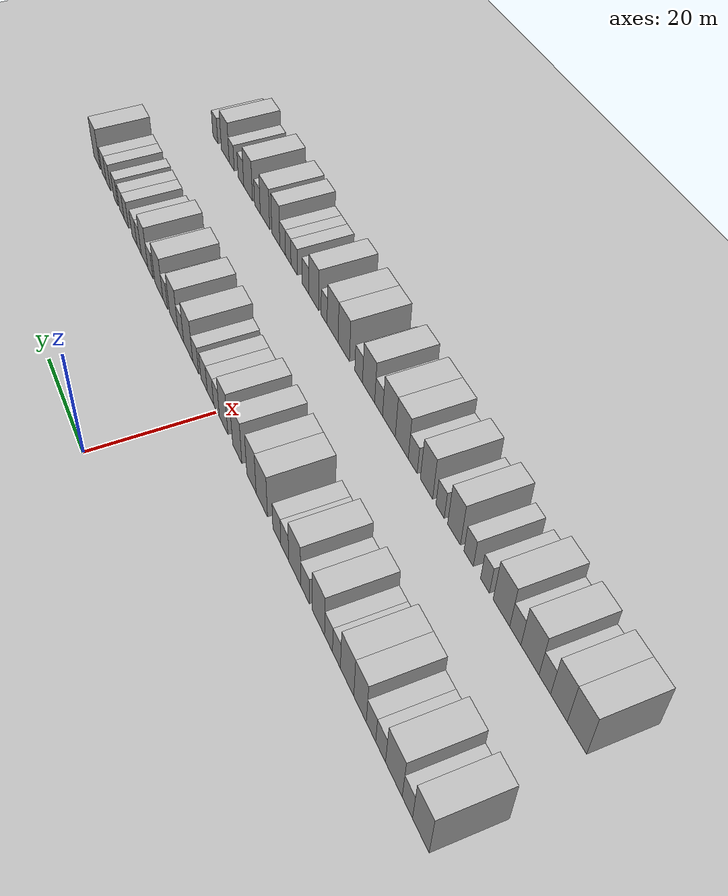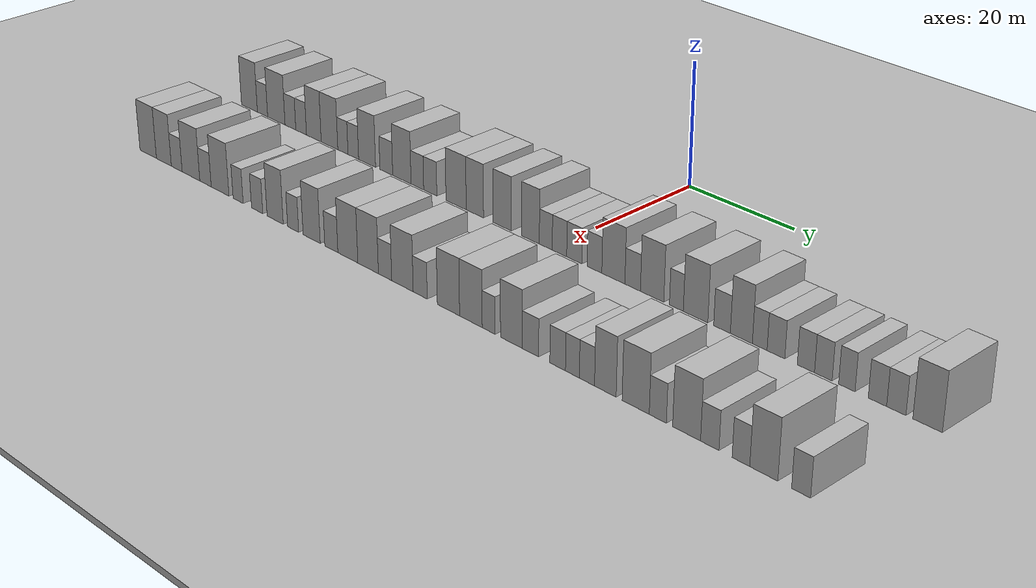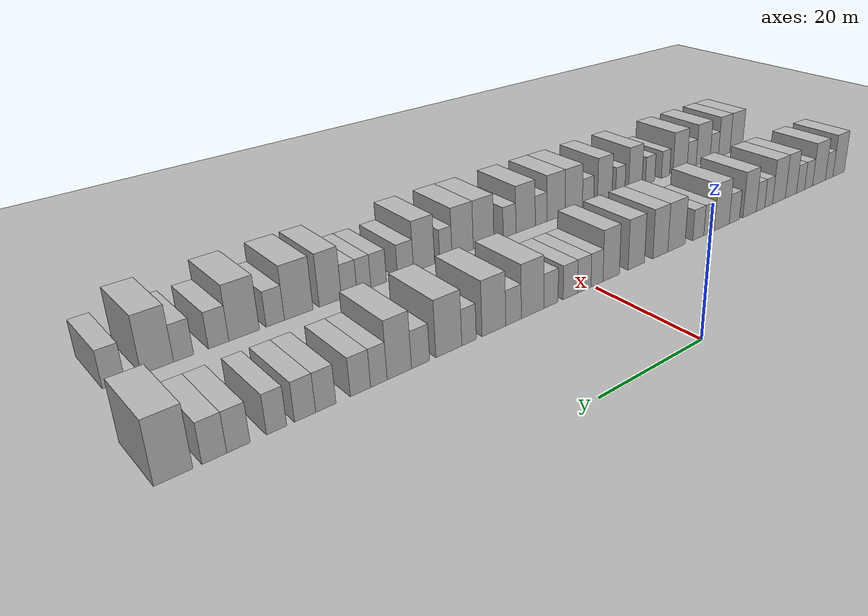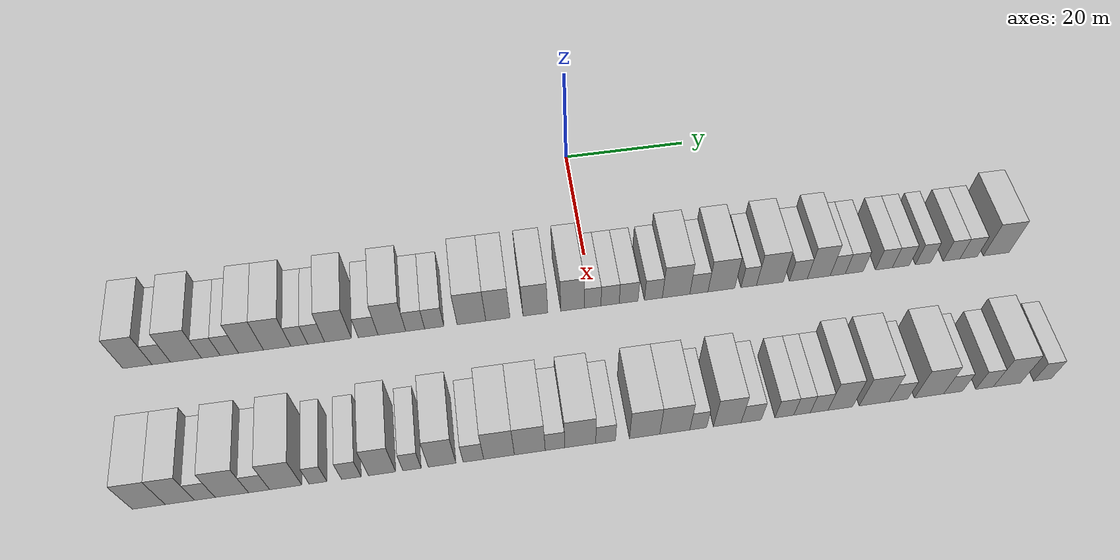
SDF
<sdf version="1.6">
 <world name="default">
  <include><name>ground_plane_1</name><uri>model://HANNAS_ground_plane</uri></include>
  <include>
   <name>ground_plane_2</name>
   <uri>model://HANNAS_ground_plane</uri>
   <pose>100 0 0  0 0 0</pose>
  </include>
  <model name="building_35">
   <static>1</static>
   <pose>25.0000 -68.0757 0 0.000000 0.000000 0.000000</pose>
   <link name="link">
    <pose>0 0 4.50 0 0 0</pose>
    <collision name="collision"><geometry><box><size>10.0000 4.1905 9.0000</size></box></geometry></collision>
    <visual name="visual">
     <cast_shadows>0</cast_shadows>
     <geometry><box><size>10.0000 4.1905 9.0000</size></box></geometry>
     <material>
      <script>
       <uri>model://HANNAS_wall/materials/scripts</uri>
       <uri>model://HANNAS_wall/materials/textures</uri>
       <name>vrc/HANNAS_wall</name>
      </script>
     </material>
    </visual>
   </link>
  </model>
  <model name="building_36">
   <static>1</static>
   <pose>25.0000 -64.6433 0 0.000000 0.000000 0.000000</pose>
   <link name="link">
    <pose>0 0 3.00 0 0 0</pose>
    <collision name="collision"><geometry><box><size>10.0000 2.6743 6.0000</size></box></geometry></collision>
    <visual name="visual">
     <cast_shadows>0</cast_shadows>
     <geometry><box><size>10.0000 2.6743 6.0000</size></box></geometry>
     <material>
      <script>
       <uri>model://HANNAS_wall/materials/scripts</uri>
       <uri>model://HANNAS_wall/materials/textures</uri>
       <name>vrc/HANNAS_wall</name>
      </script>
     </material>
    </visual>
   </link>
  </model>
  <model name="building_37">
   <static>1</static>
   <pose>25.0000 -61.0658 0 0.000000 0.000000 0.000000</pose>
   <link name="link">
    <pose>0 0 4.50 0 0 0</pose>
    <collision name="collision"><geometry><box><size>10.0000 4.4806 9.0000</size></box></geometry></collision>
    <visual name="visual">
     <cast_shadows>0</cast_shadows>
     <geometry><box><size>10.0000 4.4806 9.0000</size></box></geometry>
     <material>
      <script>
       <uri>model://HANNAS_wall/materials/scripts</uri>
       <uri>model://HANNAS_wall/materials/textures</uri>
       <name>vrc/HANNAS_wall</name>
      </script>
     </material>
    </visual>
   </link>
  </model>
  <model name="building_38">
   <static>1</static>
   <pose>25.0000 -57.4622 0 0.000000 0.000000 0.000000</pose>
   <link name="link">
    <pose>0 0 3.00 0 0 0</pose>
    <collision name="collision"><geometry><box><size>10.0000 2.7266 6.0000</size></box></geometry></collision>
    <visual name="visual">
     <cast_shadows>0</cast_shadows>
     <geometry><box><size>10.0000 2.7266 6.0000</size></box></geometry>
     <material>
      <script>
       <uri>model://HANNAS_wall/materials/scripts</uri>
       <uri>model://HANNAS_wall/materials/textures</uri>
       <name>vrc/HANNAS_wall</name>
      </script>
     </material>
    </visual>
   </link>
  </model>
  <model name="building_39">
   <static>1</static>
   <pose>25.0000 -54.7603 0 0.000000 0.000000 0.000000</pose>
   <link name="link">
    <pose>0 0 3.00 0 0 0</pose>
    <collision name="collision"><geometry><box><size>10.0000 2.6773 6.0000</size></box></geometry></collision>
    <visual name="visual">
     <cast_shadows>0</cast_shadows>
     <geometry><box><size>10.0000 2.6773 6.0000</size></box></geometry>
     <material>
      <script>
       <uri>model://HANNAS_wall/materials/scripts</uri>
       <uri>model://HANNAS_wall/materials/textures</uri>
       <name>vrc/HANNAS_wall</name>
      </script>
     </material>
    </visual>
   </link>
  </model>
  <model name="building_40">
   <static>1</static>
   <pose>25.0000 -51.5983 0 0.000000 0.000000 0.000000</pose>
   <link name="link">
    <pose>0 0 4.50 0 0 0</pose>
    <collision name="collision"><geometry><box><size>10.0000 3.6467 9.0000</size></box></geometry></collision>
    <visual name="visual">
     <cast_shadows>0</cast_shadows>
     <geometry><box><size>10.0000 3.6467 9.0000</size></box></geometry>
     <material>
      <script>
       <uri>model://HANNAS_wall/materials/scripts</uri>
       <uri>model://HANNAS_wall/materials/textures</uri>
       <name>vrc/HANNAS_wall</name>
      </script>
     </material>
    </visual>
   </link>
  </model>
  <model name="building_41">
   <static>1</static>
   <pose>25.0000 -47.7491 0 0.000000 0.000000 0.000000</pose>
   <link name="link">
    <pose>0 0 4.50 0 0 0</pose>
    <collision name="collision"><geometry><box><size>10.0000 4.0517 9.0000</size></box></geometry></collision>
    <visual name="visual">
     <cast_shadows>0</cast_shadows>
     <geometry><box><size>10.0000 4.0517 9.0000</size></box></geometry>
     <material>
      <script>
       <uri>model://HANNAS_wall/materials/scripts</uri>
       <uri>model://HANNAS_wall/materials/textures</uri>
       <name>vrc/HANNAS_wall</name>
      </script>
     </material>
    </visual>
   </link>
  </model>
  <model name="building_42">
   <static>1</static>
   <pose>25.0000 -44.4981 0 0.000000 0.000000 0.000000</pose>
   <link name="link">
    <pose>0 0 3.00 0 0 0</pose>
    <collision name="collision"><geometry><box><size>10.0000 2.4504 6.0000</size></box></geometry></collision>
    <visual name="visual">
     <cast_shadows>0</cast_shadows>
     <geometry><box><size>10.0000 2.4504 6.0000</size></box></geometry>
     <material>
      <script>
       <uri>model://HANNAS_wall/materials/scripts</uri>
       <uri>model://HANNAS_wall/materials/textures</uri>
       <name>vrc/HANNAS_wall</name>
      </script>
     </material>
    </visual>
   </link>
  </model>
  <model name="building_43">
   <static>1</static>
   <pose>25.0000 -42.0113 0 0.000000 0.000000 0.000000</pose>
   <link name="link">
    <pose>0 0 3.00 0 0 0</pose>
    <collision name="collision"><geometry><box><size>10.0000 2.5232 6.0000</size></box></geometry></collision>
    <visual name="visual">
     <cast_shadows>0</cast_shadows>
     <geometry><box><size>10.0000 2.5232 6.0000</size></box></geometry>
     <material>
      <script>
       <uri>model://HANNAS_wall/materials/scripts</uri>
       <uri>model://HANNAS_wall/materials/textures</uri>
       <name>vrc/HANNAS_wall</name>
      </script>
     </material>
    </visual>
   </link>
  </model>
  <model name="building_44">
   <static>1</static>
   <pose>25.0000 -38.7583 0 0.000000 0.000000 0.000000</pose>
   <link name="link">
    <pose>0 0 4.50 0 0 0</pose>
    <collision name="collision"><geometry><box><size>10.0000 3.9829 9.0000</size></box></geometry></collision>
    <visual name="visual">
     <cast_shadows>0</cast_shadows>
     <geometry><box><size>10.0000 3.9829 9.0000</size></box></geometry>
     <material>
      <script>
       <uri>model://HANNAS_wall/materials/scripts</uri>
       <uri>model://HANNAS_wall/materials/textures</uri>
       <name>vrc/HANNAS_wall</name>
      </script>
     </material>
    </visual>
   </link>
  </model>
  <model name="building_45">
   <static>1</static>
   <pose>25.0000 -34.2935 0 0.000000 0.000000 0.000000</pose>
   <link name="link">
    <pose>0 0 3.00 0 0 0</pose>
    <collision name="collision"><geometry><box><size>10.0000 2.9467 6.0000</size></box></geometry></collision>
    <visual name="visual">
     <cast_shadows>0</cast_shadows>
     <geometry><box><size>10.0000 2.9467 6.0000</size></box></geometry>
     <material>
      <script>
       <uri>model://HANNAS_wall/materials/scripts</uri>
       <uri>model://HANNAS_wall/materials/textures</uri>
       <name>vrc/HANNAS_wall</name>
      </script>
     </material>
    </visual>
   </link>
  </model>
  <model name="building_46">
   <static>1</static>
   <pose>25.0000 -30.7365 0 0.000000 0.000000 0.000000</pose>
   <link name="link">
    <pose>0 0 4.50 0 0 0</pose>
    <collision name="collision"><geometry><box><size>10.0000 4.1672 9.0000</size></box></geometry></collision>
    <visual name="visual">
     <cast_shadows>0</cast_shadows>
     <geometry><box><size>10.0000 4.1672 9.0000</size></box></geometry>
     <material>
      <script>
       <uri>model://HANNAS_wall/materials/scripts</uri>
       <uri>model://HANNAS_wall/materials/textures</uri>
       <name>vrc/HANNAS_wall</name>
      </script>
     </material>
    </visual>
   </link>
  </model>
  <model name="building_47">
   <static>1</static>
   <pose>25.0000 -27.2375 0 0.000000 0.000000 0.000000</pose>
   <link name="link">
    <pose>0 0 3.00 0 0 0</pose>
    <collision name="collision"><geometry><box><size>10.0000 2.8310 6.0000</size></box></geometry></collision>
    <visual name="visual">
     <cast_shadows>0</cast_shadows>
     <geometry><box><size>10.0000 2.8310 6.0000</size></box></geometry>
     <material>
      <script>
       <uri>model://HANNAS_wall/materials/scripts</uri>
       <uri>model://HANNAS_wall/materials/textures</uri>
       <name>vrc/HANNAS_wall</name>
      </script>
     </material>
    </visual>
   </link>
  </model>
  <model name="building_48">
   <static>1</static>
   <pose>25.0000 -24.3723 0 0.000000 0.000000 0.000000</pose>
   <link name="link">
    <pose>0 0 3.00 0 0 0</pose>
    <collision name="collision"><geometry><box><size>10.0000 2.8993 6.0000</size></box></geometry></collision>
    <visual name="visual">
     <cast_shadows>0</cast_shadows>
     <geometry><box><size>10.0000 2.8993 6.0000</size></box></geometry>
     <material>
      <script>
       <uri>model://HANNAS_wall/materials/scripts</uri>
       <uri>model://HANNAS_wall/materials/textures</uri>
       <name>vrc/HANNAS_wall</name>
      </script>
     </material>
    </visual>
   </link>
  </model>
  <model name="building_49">
   <static>1</static>
   <pose>25.0000 -18.7430 0 0.000000 0.000000 0.000000</pose>
   <link name="link">
    <pose>0 0 4.50 0 0 0</pose>
    <collision name="collision"><geometry><box><size>10.0000 4.3593 9.0000</size></box></geometry></collision>
    <visual name="visual">
     <cast_shadows>0</cast_shadows>
     <geometry><box><size>10.0000 4.3593 9.0000</size></box></geometry>
     <material>
      <script>
       <uri>model://HANNAS_wall/materials/scripts</uri>
       <uri>model://HANNAS_wall/materials/textures</uri>
       <name>vrc/HANNAS_wall</name>
      </script>
     </material>
    </visual>
   </link>
  </model>
  <model name="building_50">
   <static>1</static>
   <pose>25.0000 -14.7288 0 0.000000 0.000000 0.000000</pose>
   <link name="link">
    <pose>0 0 4.50 0 0 0</pose>
    <collision name="collision"><geometry><box><size>10.0000 3.6691 9.0000</size></box></geometry></collision>
    <visual name="visual">
     <cast_shadows>0</cast_shadows>
     <geometry><box><size>10.0000 3.6691 9.0000</size></box></geometry>
     <material>
      <script>
       <uri>model://HANNAS_wall/materials/scripts</uri>
       <uri>model://HANNAS_wall/materials/textures</uri>
       <name>vrc/HANNAS_wall</name>
      </script>
     </material>
    </visual>
   </link>
  </model>
  <model name="building_51">
   <static>1</static>
   <pose>25.0000 -8.9990 0 0.000000 0.000000 0.000000</pose>
   <link name="link">
    <pose>0 0 4.50 0 0 0</pose>
    <collision name="collision"><geometry><box><size>10.0000 3.7905 9.0000</size></box></geometry></collision>
    <visual name="visual">
     <cast_shadows>0</cast_shadows>
     <geometry><box><size>10.0000 3.7905 9.0000</size></box></geometry>
     <material>
      <script>
       <uri>model://HANNAS_wall/materials/scripts</uri>
       <uri>model://HANNAS_wall/materials/textures</uri>
       <name>vrc/HANNAS_wall</name>
      </script>
     </material>
    </visual>
   </link>
  </model>
  <model name="building_52">
   <static>1</static>
   <pose>25.0000 -3.2879 0 0.000000 0.000000 0.000000</pose>
   <link name="link">
    <pose>0 0 4.50 0 0 0</pose>
    <collision name="collision"><geometry><box><size>10.0000 3.6317 9.0000</size></box></geometry></collision>
    <visual name="visual">
     <cast_shadows>0</cast_shadows>
     <geometry><box><size>10.0000 3.6317 9.0000</size></box></geometry>
     <material>
      <script>
       <uri>model://HANNAS_wall/materials/scripts</uri>
       <uri>model://HANNAS_wall/materials/textures</uri>
       <name>vrc/HANNAS_wall</name>
      </script>
     </material>
    </visual>
   </link>
  </model>
  <model name="building_53">
   <static>1</static>
   <pose>25.0000 -0.1891 0 0.000000 0.000000 0.000000</pose>
   <link name="link">
    <pose>0 0 3.00 0 0 0</pose>
    <collision name="collision"><geometry><box><size>10.0000 2.5659 6.0000</size></box></geometry></collision>
    <visual name="visual">
     <cast_shadows>0</cast_shadows>
     <geometry><box><size>10.0000 2.5659 6.0000</size></box></geometry>
     <material>
      <script>
       <uri>model://HANNAS_wall/materials/scripts</uri>
       <uri>model://HANNAS_wall/materials/textures</uri>
       <name>vrc/HANNAS_wall</name>
      </script>
     </material>
    </visual>
   </link>
  </model>
  <model name="building_54">
   <static>1</static>
   <pose>25.0000 2.5082 0 0.000000 0.000000 0.000000</pose>
   <link name="link">
    <pose>0 0 3.00 0 0 0</pose>
    <collision name="collision"><geometry><box><size>10.0000 2.8288 6.0000</size></box></geometry></collision>
    <visual name="visual">
     <cast_shadows>0</cast_shadows>
     <geometry><box><size>10.0000 2.8288 6.0000</size></box></geometry>
     <material>
      <script>
       <uri>model://HANNAS_wall/materials/scripts</uri>
       <uri>model://HANNAS_wall/materials/textures</uri>
       <name>vrc/HANNAS_wall</name>
      </script>
     </material>
    </visual>
   </link>
  </model>
  <model name="building_55">
   <static>1</static>
   <pose>25.0000 5.3871 0 0.000000 0.000000 0.000000</pose>
   <link name="link">
    <pose>0 0 3.00 0 0 0</pose>
    <collision name="collision"><geometry><box><size>10.0000 2.9290 6.0000</size></box></geometry></collision>
    <visual name="visual">
     <cast_shadows>0</cast_shadows>
     <geometry><box><size>10.0000 2.9290 6.0000</size></box></geometry>
     <material>
      <script>
       <uri>model://HANNAS_wall/materials/scripts</uri>
       <uri>model://HANNAS_wall/materials/textures</uri>
       <name>vrc/HANNAS_wall</name>
      </script>
     </material>
    </visual>
   </link>
  </model>
  <model name="building_56">
   <static>1</static>
   <pose>25.0000 9.2515 0 0.000000 0.000000 0.000000</pose>
   <link name="link">
    <pose>0 0 3.00 0 0 0</pose>
    <collision name="collision"><geometry><box><size>10.0000 2.7997 6.0000</size></box></geometry></collision>
    <visual name="visual">
     <cast_shadows>0</cast_shadows>
     <geometry><box><size>10.0000 2.7997 6.0000</size></box></geometry>
     <material>
      <script>
       <uri>model://HANNAS_wall/materials/scripts</uri>
       <uri>model://HANNAS_wall/materials/textures</uri>
       <name>vrc/HANNAS_wall</name>
      </script>
     </material>
    </visual>
   </link>
  </model>
  <model name="building_57">
   <static>1</static>
   <pose>25.0000 12.8071 0 0.000000 0.000000 0.000000</pose>
   <link name="link">
    <pose>0 0 4.50 0 0 0</pose>
    <collision name="collision"><geometry><box><size>10.0000 4.3115 9.0000</size></box></geometry></collision>
    <visual name="visual">
     <cast_shadows>0</cast_shadows>
     <geometry><box><size>10.0000 4.3115 9.0000</size></box></geometry>
     <material>
      <script>
       <uri>model://HANNAS_wall/materials/scripts</uri>
       <uri>model://HANNAS_wall/materials/textures</uri>
       <name>vrc/HANNAS_wall</name>
      </script>
     </material>
    </visual>
   </link>
  </model>
  <model name="building_58">
   <static>1</static>
   <pose>25.0000 16.3882 0 0.000000 0.000000 0.000000</pose>
   <link name="link">
    <pose>0 0 3.00 0 0 0</pose>
    <collision name="collision"><geometry><box><size>10.0000 2.8509 6.0000</size></box></geometry></collision>
    <visual name="visual">
     <cast_shadows>0</cast_shadows>
     <geometry><box><size>10.0000 2.8509 6.0000</size></box></geometry>
     <material>
      <script>
       <uri>model://HANNAS_wall/materials/scripts</uri>
       <uri>model://HANNAS_wall/materials/textures</uri>
       <name>vrc/HANNAS_wall</name>
      </script>
     </material>
    </visual>
   </link>
  </model>
  <model name="building_59">
   <static>1</static>
   <pose>25.0000 19.9264 0 0.000000 0.000000 0.000000</pose>
   <link name="link">
    <pose>0 0 4.50 0 0 0</pose>
    <collision name="collision"><geometry><box><size>10.0000 4.2254 9.0000</size></box></geometry></collision>
    <visual name="visual">
     <cast_shadows>0</cast_shadows>
     <geometry><box><size>10.0000 4.2254 9.0000</size></box></geometry>
     <material>
      <script>
       <uri>model://HANNAS_wall/materials/scripts</uri>
       <uri>model://HANNAS_wall/materials/textures</uri>
       <name>vrc/HANNAS_wall</name>
      </script>
     </material>
    </visual>
   </link>
  </model>
  <model name="building_60">
   <static>1</static>
   <pose>25.0000 24.2655 0 0.000000 0.000000 0.000000</pose>
   <link name="link">
    <pose>0 0 3.00 0 0 0</pose>
    <collision name="collision"><geometry><box><size>10.0000 2.4528 6.0000</size></box></geometry></collision>
    <visual name="visual">
     <cast_shadows>0</cast_shadows>
     <geometry><box><size>10.0000 2.4528 6.0000</size></box></geometry>
     <material>
      <script>
       <uri>model://HANNAS_wall/materials/scripts</uri>
       <uri>model://HANNAS_wall/materials/textures</uri>
       <name>vrc/HANNAS_wall</name>
      </script>
     </material>
    </visual>
   </link>
  </model>
  <model name="building_61">
   <static>1</static>
   <pose>25.0000 27.6315 0 0.000000 0.000000 0.000000</pose>
   <link name="link">
    <pose>0 0 4.50 0 0 0</pose>
    <collision name="collision"><geometry><box><size>10.0000 4.2791 9.0000</size></box></geometry></collision>
    <visual name="visual">
     <cast_shadows>0</cast_shadows>
     <geometry><box><size>10.0000 4.2791 9.0000</size></box></geometry>
     <material>
      <script>
       <uri>model://HANNAS_wall/materials/scripts</uri>
       <uri>model://HANNAS_wall/materials/textures</uri>
       <name>vrc/HANNAS_wall</name>
      </script>
     </material>
    </visual>
   </link>
  </model>
  <model name="building_62">
   <static>1</static>
   <pose>25.0000 32.1901 0 0.000000 0.000000 0.000000</pose>
   <link name="link">
    <pose>0 0 3.00 0 0 0</pose>
    <collision name="collision"><geometry><box><size>10.0000 2.8381 6.0000</size></box></geometry></collision>
    <visual name="visual">
     <cast_shadows>0</cast_shadows>
     <geometry><box><size>10.0000 2.8381 6.0000</size></box></geometry>
     <material>
      <script>
       <uri>model://HANNAS_wall/materials/scripts</uri>
       <uri>model://HANNAS_wall/materials/textures</uri>
       <name>vrc/HANNAS_wall</name>
      </script>
     </material>
    </visual>
   </link>
  </model>
  <model name="building_63">
   <static>1</static>
   <pose>25.0000 35.4523 0 0.000000 0.000000 0.000000</pose>
   <link name="link">
    <pose>0 0 4.50 0 0 0</pose>
    <collision name="collision"><geometry><box><size>10.0000 3.6864 9.0000</size></box></geometry></collision>
    <visual name="visual">
     <cast_shadows>0</cast_shadows>
     <geometry><box><size>10.0000 3.6864 9.0000</size></box></geometry>
     <material>
      <script>
       <uri>model://HANNAS_wall/materials/scripts</uri>
       <uri>model://HANNAS_wall/materials/textures</uri>
       <name>vrc/HANNAS_wall</name>
      </script>
     </material>
    </visual>
   </link>
  </model>
  <model name="building_64">
   <static>1</static>
   <pose>25.0000 38.5100 0 0.000000 0.000000 0.000000</pose>
   <link name="link">
    <pose>0 0 3.00 0 0 0</pose>
    <collision name="collision"><geometry><box><size>10.0000 2.4288 6.0000</size></box></geometry></collision>
    <visual name="visual">
     <cast_shadows>0</cast_shadows>
     <geometry><box><size>10.0000 2.4288 6.0000</size></box></geometry>
     <material>
      <script>
       <uri>model://HANNAS_wall/materials/scripts</uri>
       <uri>model://HANNAS_wall/materials/textures</uri>
       <name>vrc/HANNAS_wall</name>
      </script>
     </material>
    </visual>
   </link>
  </model>
  <model name="building_65">
   <static>1</static>
   <pose>25.0000 41.1682 0 0.000000 0.000000 0.000000</pose>
   <link name="link">
    <pose>0 0 3.00 0 0 0</pose>
    <collision name="collision"><geometry><box><size>10.0000 2.8877 6.0000</size></box></geometry></collision>
    <visual name="visual">
     <cast_shadows>0</cast_shadows>
     <geometry><box><size>10.0000 2.8877 6.0000</size></box></geometry>
     <material>
      <script>
       <uri>model://HANNAS_wall/materials/scripts</uri>
       <uri>model://HANNAS_wall/materials/textures</uri>
       <name>vrc/HANNAS_wall</name>
      </script>
     </material>
    </visual>
   </link>
  </model>
  <model name="building_66">
   <static>1</static>
   <pose>25.0000 45.9838 0 0.000000 0.000000 0.000000</pose>
   <link name="link">
    <pose>0 0 3.00 0 0 0</pose>
    <collision name="collision"><geometry><box><size>10.0000 2.7433 6.0000</size></box></geometry></collision>
    <visual name="visual">
     <cast_shadows>0</cast_shadows>
     <geometry><box><size>10.0000 2.7433 6.0000</size></box></geometry>
     <material>
      <script>
       <uri>model://HANNAS_wall/materials/scripts</uri>
       <uri>model://HANNAS_wall/materials/textures</uri>
       <name>vrc/HANNAS_wall</name>
      </script>
     </material>
    </visual>
   </link>
  </model>
  <model name="building_67">
   <static>1</static>
   <pose>25.0000 48.7328 0 0.000000 0.000000 0.000000</pose>
   <link name="link">
    <pose>0 0 3.00 0 0 0</pose>
    <collision name="collision"><geometry><box><size>10.0000 2.7548 6.0000</size></box></geometry></collision>
    <visual name="visual">
     <cast_shadows>0</cast_shadows>
     <geometry><box><size>10.0000 2.7548 6.0000</size></box></geometry>
     <material>
      <script>
       <uri>model://HANNAS_wall/materials/scripts</uri>
       <uri>model://HANNAS_wall/materials/textures</uri>
       <name>vrc/HANNAS_wall</name>
      </script>
     </material>
    </visual>
   </link>
  </model>
  <model name="building_68">
   <static>1</static>
   <pose>25.0000 52.3777 0 0.000000 0.000000 0.000000</pose>
   <link name="link">
    <pose>0 0 3.00 0 0 0</pose>
    <collision name="collision"><geometry><box><size>10.0000 2.5351 6.0000</size></box></geometry></collision>
    <visual name="visual">
     <cast_shadows>0</cast_shadows>
     <geometry><box><size>10.0000 2.5351 6.0000</size></box></geometry>
     <material>
      <script>
       <uri>model://HANNAS_wall/materials/scripts</uri>
       <uri>model://HANNAS_wall/materials/textures</uri>
       <name>vrc/HANNAS_wall</name>
      </script>
     </material>
    </visual>
   </link>
  </model>
  <model name="building_69">
   <static>1</static>
   <pose>25.0000 57.0287 0 0.000000 0.000000 0.000000</pose>
   <link name="link">
    <pose>0 0 3.00 0 0 0</pose>
    <collision name="collision"><geometry><box><size>10.0000 2.7669 6.0000</size></box></geometry></collision>
    <visual name="visual">
     <cast_shadows>0</cast_shadows>
     <geometry><box><size>10.0000 2.7669 6.0000</size></box></geometry>
     <material>
      <script>
       <uri>model://HANNAS_wall/materials/scripts</uri>
       <uri>model://HANNAS_wall/materials/textures</uri>
       <name>vrc/HANNAS_wall</name>
      </script>
     </material>
    </visual>
   </link>
  </model>
  <model name="building_70">
   <static>1</static>
   <pose>25.0000 59.8413 0 0.000000 0.000000 0.000000</pose>
   <link name="link">
    <pose>0 0 3.00 0 0 0</pose>
    <collision name="collision"><geometry><box><size>10.0000 2.8583 6.0000</size></box></geometry></collision>
    <visual name="visual">
     <cast_shadows>0</cast_shadows>
     <geometry><box><size>10.0000 2.8583 6.0000</size></box></geometry>
     <material>
      <script>
       <uri>model://HANNAS_wall/materials/scripts</uri>
       <uri>model://HANNAS_wall/materials/textures</uri>
       <name>vrc/HANNAS_wall</name>
      </script>
     </material>
    </visual>
   </link>
  </model>
  <model name="building_71">
   <static>1</static>
   <pose>25.0000 64.4073 0 0.000000 0.000000 0.000000</pose>
   <link name="link">
    <pose>0 0 4.50 0 0 0</pose>
    <collision name="collision"><geometry><box><size>10.0000 4.2737 9.0000</size></box></geometry></collision>
    <visual name="visual">
     <cast_shadows>0</cast_shadows>
     <geometry><box><size>10.0000 4.2737 9.0000</size></box></geometry>
     <material>
      <script>
       <uri>model://HANNAS_wall/materials/scripts</uri>
       <uri>model://HANNAS_wall/materials/textures</uri>
       <name>vrc/HANNAS_wall</name>
      </script>
     </material>
    </visual>
   </link>
  </model>
  <model name="building_140">
   <static>1</static>
   <pose>47.0000 -64.6646 0 0.000000 0.000000 0.000000</pose>
   <link name="link">
    <pose>0 0 4.50 0 0 0</pose>
    <collision name="collision"><geometry><box><size>10.0000 4.3650 9.0000</size></box></geometry></collision>
    <visual name="visual">
     <cast_shadows>0</cast_shadows>
     <geometry><box><size>10.0000 4.3650 9.0000</size></box></geometry>
     <material>
      <script>
       <uri>model://HANNAS_wall/materials/scripts</uri>
       <uri>model://HANNAS_wall/materials/textures</uri>
       <name>vrc/HANNAS_wall</name>
      </script>
     </material>
    </visual>
   </link>
  </model>
  <model name="building_141">
   <static>1</static>
   <pose>47.0000 -60.5357 0 0.000000 0.000000 0.000000</pose>
   <link name="link">
    <pose>0 0 4.50 0 0 0</pose>
    <collision name="collision"><geometry><box><size>10.0000 3.8928 9.0000</size></box></geometry></collision>
    <visual name="visual">
     <cast_shadows>0</cast_shadows>
     <geometry><box><size>10.0000 3.8928 9.0000</size></box></geometry>
     <material>
      <script>
       <uri>model://HANNAS_wall/materials/scripts</uri>
       <uri>model://HANNAS_wall/materials/textures</uri>
       <name>vrc/HANNAS_wall</name>
      </script>
     </material>
    </visual>
   </link>
  </model>
  <model name="building_142">
   <static>1</static>
   <pose>47.0000 -57.1992 0 0.000000 0.000000 0.000000</pose>
   <link name="link">
    <pose>0 0 3.00 0 0 0</pose>
    <collision name="collision"><geometry><box><size>10.0000 2.7803 6.0000</size></box></geometry></collision>
    <visual name="visual">
     <cast_shadows>0</cast_shadows>
     <geometry><box><size>10.0000 2.7803 6.0000</size></box></geometry>
     <material>
      <script>
       <uri>model://HANNAS_wall/materials/scripts</uri>
       <uri>model://HANNAS_wall/materials/textures</uri>
       <name>vrc/HANNAS_wall</name>
      </script>
     </material>
    </visual>
   </link>
  </model>
  <model name="building_143">
   <static>1</static>
   <pose>47.0000 -53.5672 0 0.000000 0.000000 0.000000</pose>
   <link name="link">
    <pose>0 0 4.50 0 0 0</pose>
    <collision name="collision"><geometry><box><size>10.0000 4.4836 9.0000</size></box></geometry></collision>
    <visual name="visual">
     <cast_shadows>0</cast_shadows>
     <geometry><box><size>10.0000 4.4836 9.0000</size></box></geometry>
     <material>
      <script>
       <uri>model://HANNAS_wall/materials/scripts</uri>
       <uri>model://HANNAS_wall/materials/textures</uri>
       <name>vrc/HANNAS_wall</name>
      </script>
     </material>
    </visual>
   </link>
  </model>
  <model name="building_144">
   <static>1</static>
   <pose>47.0000 -49.9033 0 0.000000 0.000000 0.000000</pose>
   <link name="link">
    <pose>0 0 3.00 0 0 0</pose>
    <collision name="collision"><geometry><box><size>10.0000 2.8443 6.0000</size></box></geometry></collision>
    <visual name="visual">
     <cast_shadows>0</cast_shadows>
     <geometry><box><size>10.0000 2.8443 6.0000</size></box></geometry>
     <material>
      <script>
       <uri>model://HANNAS_wall/materials/scripts</uri>
       <uri>model://HANNAS_wall/materials/textures</uri>
       <name>vrc/HANNAS_wall</name>
      </script>
     </material>
    </visual>
   </link>
  </model>
  <model name="building_145">
   <static>1</static>
   <pose>47.0000 -46.2988 0 0.000000 0.000000 0.000000</pose>
   <link name="link">
    <pose>0 0 4.50 0 0 0</pose>
    <collision name="collision"><geometry><box><size>10.0000 4.3645 9.0000</size></box></geometry></collision>
    <visual name="visual">
     <cast_shadows>0</cast_shadows>
     <geometry><box><size>10.0000 4.3645 9.0000</size></box></geometry>
     <material>
      <script>
       <uri>model://HANNAS_wall/materials/scripts</uri>
       <uri>model://HANNAS_wall/materials/textures</uri>
       <name>vrc/HANNAS_wall</name>
      </script>
     </material>
    </visual>
   </link>
  </model>
  <model name="building_146">
   <static>1</static>
   <pose>47.0000 -41.9047 0 0.000000 0.000000 0.000000</pose>
   <link name="link">
    <pose>0 0 3.00 0 0 0</pose>
    <collision name="collision"><geometry><box><size>10.0000 2.4238 6.0000</size></box></geometry></collision>
    <visual name="visual">
     <cast_shadows>0</cast_shadows>
     <geometry><box><size>10.0000 2.4238 6.0000</size></box></geometry>
     <material>
      <script>
       <uri>model://HANNAS_wall/materials/scripts</uri>
       <uri>model://HANNAS_wall/materials/textures</uri>
       <name>vrc/HANNAS_wall</name>
      </script>
     </material>
    </visual>
   </link>
  </model>
  <model name="building_147">
   <static>1</static>
   <pose>47.0000 -37.3581 0 0.000000 0.000000 0.000000</pose>
   <link name="link">
    <pose>0 0 3.00 0 0 0</pose>
    <collision name="collision"><geometry><box><size>10.0000 2.6693 6.0000</size></box></geometry></collision>
    <visual name="visual">
     <cast_shadows>0</cast_shadows>
     <geometry><box><size>10.0000 2.6693 6.0000</size></box></geometry>
     <material>
      <script>
       <uri>model://HANNAS_wall/materials/scripts</uri>
       <uri>model://HANNAS_wall/materials/textures</uri>
       <name>vrc/HANNAS_wall</name>
      </script>
     </material>
    </visual>
   </link>
  </model>
  <model name="building_148">
   <static>1</static>
   <pose>47.0000 -33.1448 0 0.000000 0.000000 0.000000</pose>
   <link name="link">
    <pose>0 0 4.50 0 0 0</pose>
    <collision name="collision"><geometry><box><size>10.0000 3.7572 9.0000</size></box></geometry></collision>
    <visual name="visual">
     <cast_shadows>0</cast_shadows>
     <geometry><box><size>10.0000 3.7572 9.0000</size></box></geometry>
     <material>
      <script>
       <uri>model://HANNAS_wall/materials/scripts</uri>
       <uri>model://HANNAS_wall/materials/textures</uri>
       <name>vrc/HANNAS_wall</name>
      </script>
     </material>
    </visual>
   </link>
  </model>
  <model name="building_149">
   <static>1</static>
   <pose>47.0000 -29.0074 0 0.000000 0.000000 0.000000</pose>
   <link name="link">
    <pose>0 0 3.00 0 0 0</pose>
    <collision name="collision"><geometry><box><size>10.0000 2.5175 6.0000</size></box></geometry></collision>
    <visual name="visual">
     <cast_shadows>0</cast_shadows>
     <geometry><box><size>10.0000 2.5175 6.0000</size></box></geometry>
     <material>
      <script>
       <uri>model://HANNAS_wall/materials/scripts</uri>
       <uri>model://HANNAS_wall/materials/textures</uri>
       <name>vrc/HANNAS_wall</name>
      </script>
     </material>
    </visual>
   </link>
  </model>
  <model name="building_150">
   <static>1</static>
   <pose>47.0000 -24.8298 0 0.000000 0.000000 0.000000</pose>
   <link name="link">
    <pose>0 0 4.50 0 0 0</pose>
    <collision name="collision"><geometry><box><size>10.0000 3.8377 9.0000</size></box></geometry></collision>
    <visual name="visual">
     <cast_shadows>0</cast_shadows>
     <geometry><box><size>10.0000 3.8377 9.0000</size></box></geometry>
     <material>
      <script>
       <uri>model://HANNAS_wall/materials/scripts</uri>
       <uri>model://HANNAS_wall/materials/textures</uri>
       <name>vrc/HANNAS_wall</name>
      </script>
     </material>
    </visual>
   </link>
  </model>
  <model name="building_151">
   <static>1</static>
   <pose>47.0000 -20.4754 0 0.000000 0.000000 0.000000</pose>
   <link name="link">
    <pose>0 0 3.00 0 0 0</pose>
    <collision name="collision"><geometry><box><size>10.0000 2.8712 6.0000</size></box></geometry></collision>
    <visual name="visual">
     <cast_shadows>0</cast_shadows>
     <geometry><box><size>10.0000 2.8712 6.0000</size></box></geometry>
     <material>
      <script>
       <uri>model://HANNAS_wall/materials/scripts</uri>
       <uri>model://HANNAS_wall/materials/textures</uri>
       <name>vrc/HANNAS_wall</name>
      </script>
     </material>
    </visual>
   </link>
  </model>
  <model name="building_152">
   <static>1</static>
   <pose>47.0000 -16.8855 0 0.000000 0.000000 0.000000</pose>
   <link name="link">
    <pose>0 0 4.50 0 0 0</pose>
    <collision name="collision"><geometry><box><size>10.0000 4.3086 9.0000</size></box></geometry></collision>
    <visual name="visual">
     <cast_shadows>0</cast_shadows>
     <geometry><box><size>10.0000 4.3086 9.0000</size></box></geometry>
     <material>
      <script>
       <uri>model://HANNAS_wall/materials/scripts</uri>
       <uri>model://HANNAS_wall/materials/textures</uri>
       <name>vrc/HANNAS_wall</name>
      </script>
     </material>
    </visual>
   </link>
  </model>
  <model name="building_153">
   <static>1</static>
   <pose>47.0000 -12.5590 0 0.000000 0.000000 0.000000</pose>
   <link name="link">
    <pose>0 0 4.50 0 0 0</pose>
    <collision name="collision"><geometry><box><size>10.0000 4.3444 9.0000</size></box></geometry></collision>
    <visual name="visual">
     <cast_shadows>0</cast_shadows>
     <geometry><box><size>10.0000 4.3444 9.0000</size></box></geometry>
     <material>
      <script>
       <uri>model://HANNAS_wall/materials/scripts</uri>
       <uri>model://HANNAS_wall/materials/textures</uri>
       <name>vrc/HANNAS_wall</name>
      </script>
     </material>
    </visual>
   </link>
  </model>
  <model name="building_154">
   <static>1</static>
   <pose>47.0000 -9.0023 0 0.000000 0.000000 0.000000</pose>
   <link name="link">
    <pose>0 0 3.00 0 0 0</pose>
    <collision name="collision"><geometry><box><size>10.0000 2.7690 6.0000</size></box></geometry></collision>
    <visual name="visual">
     <cast_shadows>0</cast_shadows>
     <geometry><box><size>10.0000 2.7690 6.0000</size></box></geometry>
     <material>
      <script>
       <uri>model://HANNAS_wall/materials/scripts</uri>
       <uri>model://HANNAS_wall/materials/textures</uri>
       <name>vrc/HANNAS_wall</name>
      </script>
     </material>
    </visual>
   </link>
  </model>
  <model name="building_155">
   <static>1</static>
   <pose>47.0000 -5.4226 0 0.000000 0.000000 0.000000</pose>
   <link name="link">
    <pose>0 0 4.50 0 0 0</pose>
    <collision name="collision"><geometry><box><size>10.0000 4.3904 9.0000</size></box></geometry></collision>
    <visual name="visual">
     <cast_shadows>0</cast_shadows>
     <geometry><box><size>10.0000 4.3904 9.0000</size></box></geometry>
     <material>
      <script>
       <uri>model://HANNAS_wall/materials/scripts</uri>
       <uri>model://HANNAS_wall/materials/textures</uri>
       <name>vrc/HANNAS_wall</name>
      </script>
     </material>
    </visual>
   </link>
  </model>
  <model name="building_156">
   <static>1</static>
   <pose>47.0000 -1.8176 0 0.000000 0.000000 0.000000</pose>
   <link name="link">
    <pose>0 0 3.00 0 0 0</pose>
    <collision name="collision"><geometry><box><size>10.0000 2.8195 6.0000</size></box></geometry></collision>
    <visual name="visual">
     <cast_shadows>0</cast_shadows>
     <geometry><box><size>10.0000 2.8195 6.0000</size></box></geometry>
     <material>
      <script>
       <uri>model://HANNAS_wall/materials/scripts</uri>
       <uri>model://HANNAS_wall/materials/textures</uri>
       <name>vrc/HANNAS_wall</name>
      </script>
     </material>
    </visual>
   </link>
  </model>
  <model name="building_157">
   <static>1</static>
   <pose>47.0000 3.7697 0 0.000000 0.000000 0.000000</pose>
   <link name="link">
    <pose>0 0 4.50 0 0 0</pose>
    <collision name="collision"><geometry><box><size>10.0000 4.3552 9.0000</size></box></geometry></collision>
    <visual name="visual">
     <cast_shadows>0</cast_shadows>
     <geometry><box><size>10.0000 4.3552 9.0000</size></box></geometry>
     <material>
      <script>
       <uri>model://HANNAS_wall/materials/scripts</uri>
       <uri>model://HANNAS_wall/materials/textures</uri>
       <name>vrc/HANNAS_wall</name>
      </script>
     </material>
    </visual>
   </link>
  </model>
  <model name="building_158">
   <static>1</static>
   <pose>47.0000 8.1143 0 0.000000 0.000000 0.000000</pose>
   <link name="link">
    <pose>0 0 4.50 0 0 0</pose>
    <collision name="collision"><geometry><box><size>10.0000 4.3340 9.0000</size></box></geometry></collision>
    <visual name="visual">
     <cast_shadows>0</cast_shadows>
     <geometry><box><size>10.0000 4.3340 9.0000</size></box></geometry>
     <material>
      <script>
       <uri>model://HANNAS_wall/materials/scripts</uri>
       <uri>model://HANNAS_wall/materials/textures</uri>
       <name>vrc/HANNAS_wall</name>
      </script>
     </material>
    </visual>
   </link>
  </model>
  <model name="building_159">
   <static>1</static>
   <pose>47.0000 11.4961 0 0.000000 0.000000 0.000000</pose>
   <link name="link">
    <pose>0 0 3.00 0 0 0</pose>
    <collision name="collision"><geometry><box><size>10.0000 2.4295 6.0000</size></box></geometry></collision>
    <visual name="visual">
     <cast_shadows>0</cast_shadows>
     <geometry><box><size>10.0000 2.4295 6.0000</size></box></geometry>
     <material>
      <script>
       <uri>model://HANNAS_wall/materials/scripts</uri>
       <uri>model://HANNAS_wall/materials/textures</uri>
       <name>vrc/HANNAS_wall</name>
      </script>
     </material>
    </visual>
   </link>
  </model>
  <model name="building_160">
   <static>1</static>
   <pose>47.0000 15.7279 0 0.000000 0.000000 0.000000</pose>
   <link name="link">
    <pose>0 0 4.50 0 0 0</pose>
    <collision name="collision"><geometry><box><size>10.0000 4.0341 9.0000</size></box></geometry></collision>
    <visual name="visual">
     <cast_shadows>0</cast_shadows>
     <geometry><box><size>10.0000 4.0341 9.0000</size></box></geometry>
     <material>
      <script>
       <uri>model://HANNAS_wall/materials/scripts</uri>
       <uri>model://HANNAS_wall/materials/textures</uri>
       <name>vrc/HANNAS_wall</name>
      </script>
     </material>
    </visual>
   </link>
  </model>
  <model name="building_161">
   <static>1</static>
   <pose>47.0000 19.2227 0 0.000000 0.000000 0.000000</pose>
   <link name="link">
    <pose>0 0 3.00 0 0 0</pose>
    <collision name="collision"><geometry><box><size>10.0000 2.9554 6.0000</size></box></geometry></collision>
    <visual name="visual">
     <cast_shadows>0</cast_shadows>
     <geometry><box><size>10.0000 2.9554 6.0000</size></box></geometry>
     <material>
      <script>
       <uri>model://HANNAS_wall/materials/scripts</uri>
       <uri>model://HANNAS_wall/materials/textures</uri>
       <name>vrc/HANNAS_wall</name>
      </script>
     </material>
    </visual>
   </link>
  </model>
  <model name="building_162">
   <static>1</static>
   <pose>47.0000 24.0837 0 0.000000 0.000000 0.000000</pose>
   <link name="link">
    <pose>0 0 3.00 0 0 0</pose>
    <collision name="collision"><geometry><box><size>10.0000 2.7666 6.0000</size></box></geometry></collision>
    <visual name="visual">
     <cast_shadows>0</cast_shadows>
     <geometry><box><size>10.0000 2.7666 6.0000</size></box></geometry>
     <material>
      <script>
       <uri>model://HANNAS_wall/materials/scripts</uri>
       <uri>model://HANNAS_wall/materials/textures</uri>
       <name>vrc/HANNAS_wall</name>
      </script>
     </material>
    </visual>
   </link>
  </model>
  <model name="building_163">
   <static>1</static>
   <pose>47.0000 26.6820 0 0.000000 0.000000 0.000000</pose>
   <link name="link">
    <pose>0 0 3.00 0 0 0</pose>
    <collision name="collision"><geometry><box><size>10.0000 2.4300 6.0000</size></box></geometry></collision>
    <visual name="visual">
     <cast_shadows>0</cast_shadows>
     <geometry><box><size>10.0000 2.4300 6.0000</size></box></geometry>
     <material>
      <script>
       <uri>model://HANNAS_wall/materials/scripts</uri>
       <uri>model://HANNAS_wall/materials/textures</uri>
       <name>vrc/HANNAS_wall</name>
      </script>
     </material>
    </visual>
   </link>
  </model>
  <model name="building_164">
   <static>1</static>
   <pose>47.0000 29.2029 0 0.000000 0.000000 0.000000</pose>
   <link name="link">
    <pose>0 0 3.00 0 0 0</pose>
    <collision name="collision"><geometry><box><size>10.0000 2.6118 6.0000</size></box></geometry></collision>
    <visual name="visual">
     <cast_shadows>0</cast_shadows>
     <geometry><box><size>10.0000 2.6118 6.0000</size></box></geometry>
     <material>
      <script>
       <uri>model://HANNAS_wall/materials/scripts</uri>
       <uri>model://HANNAS_wall/materials/textures</uri>
       <name>vrc/HANNAS_wall</name>
      </script>
     </material>
    </visual>
   </link>
  </model>
  <model name="building_165">
   <static>1</static>
   <pose>47.0000 32.3394 0 0.000000 0.000000 0.000000</pose>
   <link name="link">
    <pose>0 0 4.50 0 0 0</pose>
    <collision name="collision"><geometry><box><size>10.0000 3.6612 9.0000</size></box></geometry></collision>
    <visual name="visual">
     <cast_shadows>0</cast_shadows>
     <geometry><box><size>10.0000 3.6612 9.0000</size></box></geometry>
     <material>
      <script>
       <uri>model://HANNAS_wall/materials/scripts</uri>
       <uri>model://HANNAS_wall/materials/textures</uri>
       <name>vrc/HANNAS_wall</name>
      </script>
     </material>
    </visual>
   </link>
  </model>
  <model name="building_166">
   <static>1</static>
   <pose>47.0000 37.4096 0 0.000000 0.000000 0.000000</pose>
   <link name="link">
    <pose>0 0 4.50 0 0 0</pose>
    <collision name="collision"><geometry><box><size>10.0000 4.4792 9.0000</size></box></geometry></collision>
    <visual name="visual">
     <cast_shadows>0</cast_shadows>
     <geometry><box><size>10.0000 4.4792 9.0000</size></box></geometry>
     <material>
      <script>
       <uri>model://HANNAS_wall/materials/scripts</uri>
       <uri>model://HANNAS_wall/materials/textures</uri>
       <name>vrc/HANNAS_wall</name>
      </script>
     </material>
    </visual>
   </link>
  </model>
  <model name="building_167">
   <static>1</static>
   <pose>47.0000 41.0374 0 0.000000 0.000000 0.000000</pose>
   <link name="link">
    <pose>0 0 3.00 0 0 0</pose>
    <collision name="collision"><geometry><box><size>10.0000 2.7763 6.0000</size></box></geometry></collision>
    <visual name="visual">
     <cast_shadows>0</cast_shadows>
     <geometry><box><size>10.0000 2.7763 6.0000</size></box></geometry>
     <material>
      <script>
       <uri>model://HANNAS_wall/materials/scripts</uri>
       <uri>model://HANNAS_wall/materials/textures</uri>
       <name>vrc/HANNAS_wall</name>
      </script>
     </material>
    </visual>
   </link>
  </model>
  <model name="building_168">
   <static>1</static>
   <pose>47.0000 45.6318 0 0.000000 0.000000 0.000000</pose>
   <link name="link">
    <pose>0 0 4.50 0 0 0</pose>
    <collision name="collision"><geometry><box><size>10.0000 4.4126 9.0000</size></box></geometry></collision>
    <visual name="visual">
     <cast_shadows>0</cast_shadows>
     <geometry><box><size>10.0000 4.4126 9.0000</size></box></geometry>
     <material>
      <script>
       <uri>model://HANNAS_wall/materials/scripts</uri>
       <uri>model://HANNAS_wall/materials/textures</uri>
       <name>vrc/HANNAS_wall</name>
      </script>
     </material>
    </visual>
   </link>
  </model>
  <model name="building_169">
   <static>1</static>
   <pose>47.0000 49.2706 0 0.000000 0.000000 0.000000</pose>
   <link name="link">
    <pose>0 0 3.00 0 0 0</pose>
    <collision name="collision"><geometry><box><size>10.0000 2.8651 6.0000</size></box></geometry></collision>
    <visual name="visual">
     <cast_shadows>0</cast_shadows>
     <geometry><box><size>10.0000 2.8651 6.0000</size></box></geometry>
     <material>
      <script>
       <uri>model://HANNAS_wall/materials/scripts</uri>
       <uri>model://HANNAS_wall/materials/textures</uri>
       <name>vrc/HANNAS_wall</name>
      </script>
     </material>
    </visual>
   </link>
  </model>
  <model name="building_170">
   <static>1</static>
   <pose>47.0000 54.0342 0 0.000000 0.000000 0.000000</pose>
   <link name="link">
    <pose>0 0 3.00 0 0 0</pose>
    <collision name="collision"><geometry><box><size>10.0000 2.6620 6.0000</size></box></geometry></collision>
    <visual name="visual">
     <cast_shadows>0</cast_shadows>
     <geometry><box><size>10.0000 2.6620 6.0000</size></box></geometry>
     <material>
      <script>
       <uri>model://HANNAS_wall/materials/scripts</uri>
       <uri>model://HANNAS_wall/materials/textures</uri>
       <name>vrc/HANNAS_wall</name>
      </script>
     </material>
    </visual>
   </link>
  </model>
  <model name="building_171">
   <static>1</static>
   <pose>47.0000 57.4485 0 0.000000 0.000000 0.000000</pose>
   <link name="link">
    <pose>0 0 4.50 0 0 0</pose>
    <collision name="collision"><geometry><box><size>10.0000 4.1666 9.0000</size></box></geometry></collision>
    <visual name="visual">
     <cast_shadows>0</cast_shadows>
     <geometry><box><size>10.0000 4.1666 9.0000</size></box></geometry>
     <material>
      <script>
       <uri>model://HANNAS_wall/materials/scripts</uri>
       <uri>model://HANNAS_wall/materials/textures</uri>
       <name>vrc/HANNAS_wall</name>
      </script>
     </material>
    </visual>
   </link>
  </model>
  <model name="building_172">
   <static>1</static>
   <pose>47.0000 62.8997 0 0.000000 0.000000 0.000000</pose>
   <link name="link">
    <pose>0 0 3.00 0 0 0</pose>
    <collision name="collision"><geometry><box><size>10.0000 2.7359 6.0000</size></box></geometry></collision>
    <visual name="visual">
     <cast_shadows>0</cast_shadows>
     <geometry><box><size>10.0000 2.7359 6.0000</size></box></geometry>
     <material>
      <script>
       <uri>model://HANNAS_wall/materials/scripts</uri>
       <uri>model://HANNAS_wall/materials/textures</uri>
       <name>vrc/HANNAS_wall</name>
      </script>
     </material>
    </visual>
   </link>
  </model>
 </world>
</sdf>
